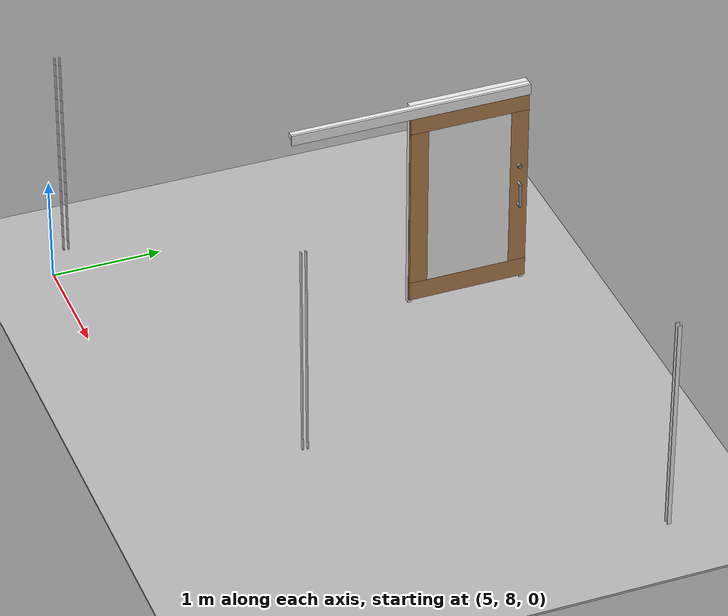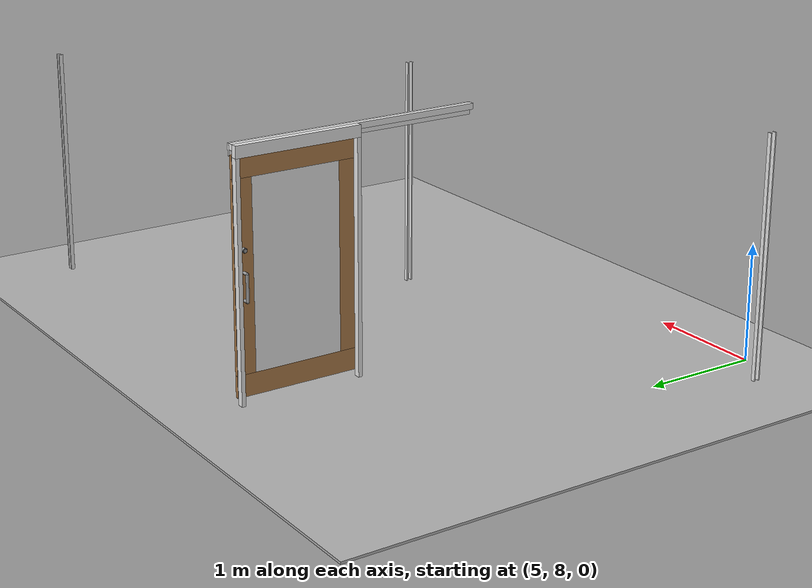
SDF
<sdf version="1.6">
 <world name="default">
  <model name="gplane">
   <pose>5.0375 6.59 0 0 -0 0</pose>
   <link name="body">
    <collision name="gplane_coll">
     <geometry><plane><normal>0 0 1</normal><size>10.075 13.18</size></plane></geometry>
     <surface><contact><ode><kp>1e+06</kp><kd>1</kd></ode></contact></surface>
     <laser_retro>2000</laser_retro>
    </collision>
    <visual name="gplane_vis">
     <geometry><plane><normal>0 0 1</normal><size>10.075 13.18</size></plane></geometry>
     <material>
      <script>
       <uri>model://base_materials/carpet/scripts</uri>
       <uri>model://base_materials/carpet/textures</uri>
       <name>carpet/carpet01</name>
      </script>
     </material>
     <cast_shadows>0</cast_shadows>
    </visual>
    <velocity_decay><linear>0</linear><angular>0</angular></velocity_decay>
   </link>
   <static>1</static>
  </model>
  <model name="door_stopper_x13y13">
   <link name="door_frame">
    <visual name="stopper">
     <pose>0.0225 0.0175 1.025 0 -0 0</pose>
     <geometry><box><size>0.01 0.035 2.05</size></box></geometry>
     <material>
      <script><uri>model://base_materials/color/scripts</uri><name>hsr_color/white</name></script>
     </material>
    </visual>
    <collision name="collision_frame_1">
     <pose>0.0225 0.0175 1.025 0 -0 0</pose>
     <geometry><box><size>0.01 0.035 2.05</size></box></geometry>
    </collision>
    <visual name="frame_2">
     <pose>-0.0225 0.0175 1.025 0 -0 0</pose>
     <geometry><box><size>0.01 0.035 2.05</size></box></geometry>
     <material>
      <script><uri>model://base_materials/color/scripts</uri><name>hsr_color/white</name></script>
     </material>
    </visual>
    <collision name="collision_frame_2">
     <pose>-0.0225 0.0175 1.025 0 -0 0</pose>
     <geometry><box><size>0.01 0.035 2.05</size></box></geometry>
    </collision>
   </link>
   <static>1</static>
   <pose>10.1025 11.67 0 0 -0 0</pose>
  </model>
  <model name="door_stopper_x08y09a">
   <link name="door_frame">
    <visual name="stopper">
     <pose>0.0225 0.0175 1.025 0 -0 0</pose>
     <geometry><box><size>0.01 0.035 2.05</size></box></geometry>
     <material>
      <script><uri>model://base_materials/color/scripts</uri><name>hsr_color/white</name></script>
     </material>
    </visual>
    <collision name="collision_frame_1">
     <pose>0.0225 0.0175 1.025 0 -0 0</pose>
     <geometry><box><size>0.01 0.035 2.05</size></box></geometry>
    </collision>
    <visual name="frame_2">
     <pose>-0.0225 0.0175 1.025 0 -0 0</pose>
     <geometry><box><size>0.01 0.035 2.05</size></box></geometry>
     <material>
      <script><uri>model://base_materials/color/scripts</uri><name>hsr_color/white</name></script>
     </material>
    </visual>
    <collision name="collision_frame_2">
     <pose>-0.0225 0.0175 1.025 0 -0 0</pose>
     <geometry><box><size>0.01 0.035 2.05</size></box></geometry>
    </collision>
   </link>
   <static>1</static>
   <pose>4.675 8.23 0 0 -0 1.5708</pose>
  </model>
  <model name="door_x08y13">
   <joint name="frame_to_world_joint" type="revolute">
    <parent>world</parent>
    <child>frame</child>
    <axis>
     <xyz>0 0 1</xyz>
     <limit><upper>0</upper><lower>0</lower></limit>
     <use_parent_model_frame>1</use_parent_model_frame>
     <dynamics><spring_reference>0</spring_reference><spring_stiffness>0</spring_stiffness></dynamics>
    </axis>
   </joint>
   <link name="frame">
    <inertial>
     <mass>50</mass>
     <inertia><ixx>1</ixx><ixy>0</ixy><ixz>0</ixz><iyy>1</iyy><iyz>0</iyz><izz>1</izz></inertia>
    </inertial>
    <visual name="right_frame">
     <pose>0 0.5325 0.995 0 -0 0</pose>
     <geometry><box><size>0.055 0.035 1.99</size></box></geometry>
     <material>
      <script><uri>model://base_materials/color/scripts</uri><name>hsr_color/white</name></script>
     </material>
    </visual>
    <collision name="collision_right_frame">
     <pose>0 0.5325 0.995 0 -0 0</pose>
     <geometry><box><size>0.055 0.035 1.99</size></box></geometry>
    </collision>
    <visual name="left_frame">
     <pose>0 -0.5325 0.995 0 -0 0</pose>
     <geometry><box><size>0.055 0.035 1.99</size></box></geometry>
     <material>
      <script><uri>model://base_materials/color/scripts</uri><name>hsr_color/white</name></script>
     </material>
    </visual>
    <collision name="collision_left_frame">
     <pose>0 -0.5325 0.995 0 -0 0</pose>
     <geometry><box><size>0.055 0.035 1.99</size></box></geometry>
    </collision>
    <visual name="top_frame">
     <pose>0 0 2.04 0 -0 0</pose>
     <geometry><box><size>0.055 1.1 0.1</size></box></geometry>
     <material>
      <script><uri>model://base_materials/color/scripts</uri><name>hsr_color/white</name></script>
     </material>
    </visual>
    <collision name="collision_top_frame">
     <pose>0 0 2.04 0 -0 0</pose>
     <geometry><box><size>0.055 1.1 0.1</size></box></geometry>
    </collision>
    <visual name="top_guard">
     <pose>0.05 -0.55 2.065 0 -0 0</pose>
     <geometry><box><size>0.045 2.2 0.05</size></box></geometry>
     <material>
      <script><uri>model://base_materials/color/scripts</uri><name>hsr_color/white</name></script>
     </material>
    </visual>
    <collision name="collision_top_guard">
     <pose>0.05 -0.55 2.065 0 -0 0</pose>
     <geometry><box><size>0.045 2.2 0.05</size></box></geometry>
    </collision>
    <visual name="front_guard">
     <pose>0.0825 -0.55 2.04 0 -0 0</pose>
     <geometry><box><size>0.02 2.2 0.1</size></box></geometry>
     <material>
      <script><uri>model://base_materials/color/scripts</uri><name>hsr_color/white</name></script>
     </material>
    </visual>
    <collision name="collision_front_guard">
     <pose>0.0825 -0.55 2.04 0 -0 0</pose>
     <geometry><box><size>0.02 2.2 0.1</size></box></geometry>
    </collision>
   </link>
   <link name="door">
    <pose>-0.0275 0 0 0 -0 0</pose>
    <visual name="glass">
     <pose>0.0775 0 1.025 0 -0 0</pose>
     <geometry><box><size>0.03 0.77 1.58</size></box></geometry>
     <material>
      <script>
       <name>hsr_color/white_transparency1</name>
       <name>hsr_color/cornflowerblue_transparency1</name>
       <uri>__default__</uri>
      </script>
     </material>
    </visual>
    <collision name="collision_glass">
     <pose>0.0775 0 1.025 0 -0 0</pose>
     <geometry><box><size>0.03 0.77 1.58</size></box></geometry>
    </collision>
    <visual name="top_frame">
     <pose>0.0775 0 1.9075 0 -0 0</pose>
     <geometry><box><size>0.03 1.1 0.185</size></box></geometry>
     <material>
      <script><uri>model://base_materials/wood/scripts/wood.material</uri><name>base_materials/wood</name></script>
     </material>
    </visual>
    <collision name="collision_top_frame">
     <pose>0.0775 0 1.9075 0 -0 0</pose>
     <geometry><box><size>0.03 1.1 0.185</size></box></geometry>
    </collision>
    <visual name="right_frame">
     <pose>0.0775 0.4675 1.025 0 -0 0</pose>
     <geometry><box><size>0.03 0.165 1.58</size></box></geometry>
     <material>
      <script><uri>model://base_materials/wood/scripts/wood.material</uri><name>base_materials/wood</name></script>
     </material>
    </visual>
    <collision name="collision_right_frame">
     <pose>0.0775 0.4675 1.025 0 -0 0</pose>
     <geometry><box><size>0.03 0.165 1.58</size></box></geometry>
    </collision>
    <visual name="left_frame">
     <pose>0.0775 -0.4675 1.025 0 -0 0</pose>
     <geometry><box><size>0.03 0.165 1.58</size></box></geometry>
     <material>
      <script><uri>model://base_materials/wood/scripts/wood.material</uri><name>base_materials/wood</name></script>
     </material>
    </visual>
    <collision name="collision_left_frame">
     <pose>0.0775 -0.4675 1.025 0 -0 0</pose>
     <geometry><box><size>0.03 0.165 1.58</size></box></geometry>
    </collision>
    <visual name="bottom_frame">
     <pose>0.0775 0 0.1425 0 -0 0</pose>
     <geometry><box><size>0.03 1.1 0.185</size></box></geometry>
     <material>
      <script><uri>model://base_materials/wood/scripts/wood.material</uri><name>base_materials/wood</name></script>
     </material>
    </visual>
    <collision name="collision_bottom_frame">
     <pose>0.0775 0 0.1425 0 -0 0</pose>
     <geometry><box><size>0.03 1.1 0.185</size></box></geometry>
    </collision>
    <visual name="handle_top_frame">
     <pose>0.0775 0.4675 1.0675 3.14159 1.57079 3.14159</pose>
     <geometry><cylinder><radius>0.0125</radius><length>0.125</length></cylinder></geometry>
     <material>
      <script><uri>model://base_materials/color/scripts</uri><name>hsr_color/grey</name></script>
     </material>
    </visual>
    <collision name="collision_handle_top_frame">
     <pose>0.0775 0.4675 1.0675 3.14159 1.57079 3.14159</pose>
     <geometry><cylinder><radius>0.0125</radius><length>0.125</length></cylinder></geometry>
    </collision>
    <visual name="handle_bottom_frame">
     <pose>0.0775 0.4675 0.8425 3.14159 1.57079 3.14159</pose>
     <geometry><cylinder><radius>0.0125</radius><length>0.125</length></cylinder></geometry>
     <material>
      <script><uri>model://base_materials/color/scripts</uri><name>hsr_color/grey</name></script>
     </material>
    </visual>
    <collision name="collision_handle_bottom_frame">
     <pose>0.0775 0.4675 0.8425 3.14159 1.57079 3.14159</pose>
     <geometry><cylinder><radius>0.0125</radius><length>0.125</length></cylinder></geometry>
    </collision>
    <visual name="handle_front_frame">
     <pose>0.14 0.4675 0.955 0 -0 0</pose>
     <geometry><cylinder><radius>0.0125</radius><length>0.225</length></cylinder></geometry>
     <material>
      <script><uri>model://base_materials/color/scripts</uri><name>hsr_color/grey</name></script>
     </material>
    </visual>
    <collision name="collision_handle_front_frame">
     <pose>0.14 0.4675 0.955 0 -0 0</pose>
     <geometry><cylinder><radius>0.0125</radius><length>0.225</length></cylinder></geometry>
    </collision>
    <visual name="handle_back_frame">
     <pose>0.015 0.4675 0.955 0 -0 0</pose>
     <geometry><cylinder><radius>0.0125</radius><length>0.225</length></cylinder></geometry>
     <material>
      <script><uri>model://base_materials/color/scripts</uri><name>hsr_color/grey</name></script>
     </material>
    </visual>
    <collision name="collision_handle_back_frame">
     <pose>0.015 0.4675 0.955 0 -0 0</pose>
     <geometry><cylinder><radius>0.0125</radius><length>0.225</length></cylinder></geometry>
    </collision>
    <visual name="handle_front_top_corner">
     <pose>0.14 0.4675 1.0675 0 -0 0</pose>
     <geometry><sphere><radius>0.0125</radius></sphere></geometry>
     <material>
      <script><uri>model://base_materials/color/scripts</uri><name>hsr_color/grey</name></script>
     </material>
    </visual>
    <collision name="collision_handle_front_top_corner">
     <pose>0.14 0.4675 1.0675 0 -0 0</pose>
     <geometry><sphere><radius>0.0125</radius></sphere></geometry>
    </collision>
    <visual name="handle_front_bottom_corner">
     <pose>0.14 0.4675 0.8425 0 -0 0</pose>
     <geometry><sphere><radius>0.0125</radius></sphere></geometry>
     <material>
      <script><uri>model://base_materials/color/scripts</uri><name>hsr_color/grey</name></script>
     </material>
    </visual>
    <collision name="collision_handle_front_bottom_corner">
     <pose>0.14 0.4675 0.8425 0 -0 0</pose>
     <geometry><sphere><radius>0.0125</radius></sphere></geometry>
    </collision>
    <visual name="handle_back_top_corner">
     <pose>0.015 0.4675 1.0675 0 -0 0</pose>
     <geometry><sphere><radius>0.0125</radius></sphere></geometry>
     <material>
      <script><uri>model://base_materials/color/scripts</uri><name>hsr_color/grey</name></script>
     </material>
    </visual>
    <collision name="collision_handle_back_top_corner">
     <pose>0.015 0.4675 1.0675 0 -0 0</pose>
     <geometry><sphere><radius>0.0125</radius></sphere></geometry>
    </collision>
    <visual name="handle_back_bottom_corner">
     <pose>0.015 0.4675 0.8425 0 -0 0</pose>
     <geometry><sphere><radius>0.0125</radius></sphere></geometry>
     <material>
      <script><uri>model://base_materials/color/scripts</uri><name>hsr_color/grey</name></script>
     </material>
    </visual>
    <collision name="collision_handle_back_bottom_corner">
     <pose>0.015 0.4675 0.8425 0 -0 0</pose>
     <geometry><sphere><radius>0.0125</radius></sphere></geometry>
    </collision>
    <visual name="handle_lock1">
     <pose>0.0775 0.4675 1.25 3.14159 1.57079 3.14159</pose>
     <geometry><cylinder><radius>0.02</radius><length>0.08</length></cylinder></geometry>
     <material>
      <script><uri>model://base_materials/color/scripts</uri><name>hsr_color/grey</name></script>
     </material>
    </visual>
    <collision name="collision_handle_lock1">
     <pose>0.0775 0.4675 1.25 3.14159 1.57079 3.14159</pose>
     <geometry><cylinder><radius>0.02</radius><length>0.08</length></cylinder></geometry>
    </collision>
    <visual name="handle_lock2">
     <pose>0.0775 0.4675 1.25 3.14159 1.57079 3.14159</pose>
     <geometry><cylinder><radius>0.015</radius><length>0.09</length></cylinder></geometry>
     <material>
      <script><uri>model://base_materials/color/scripts</uri><name>hsr_color/grey</name></script>
     </material>
    </visual>
    <collision name="collision_handle_lock2">
     <pose>0.0775 0.4675 1.25 3.14159 1.57079 3.14159</pose>
     <geometry><cylinder><radius>0.015</radius><length>0.09</length></cylinder></geometry>
    </collision>
    <velocity_decay><linear>0</linear><angular>0</angular></velocity_decay>
    <inertial>
     <inertia><ixx>1</ixx><ixy>0</ixy><ixz>0</ixz><iyy>1</iyy><iyz>0</iyz><izz>1</izz></inertia>
     <mass>1</mass>
    </inertial>
   </link>
   <joint name="top_sliding_joint" type="prismatic">
    <parent>frame</parent>
    <child>door</child>
    <axis>
     <dynamics>
      <damping>1</damping>
      <friction>1</friction>
      <spring_reference>0</spring_reference>
      <spring_stiffness>0</spring_stiffness>
     </dynamics>
     <limit><lower>-1</lower><upper>0</upper></limit>
     <xyz>0 1 0</xyz>
     <use_parent_model_frame>1</use_parent_model_frame>
    </axis>
   </joint>
   <static>0</static>
   <pose>6.47818 11.35 -0.001042 -0.000109 -4.5e-05 0.00053</pose>
  </model>
  <model name="door_stopper_x10y11">
   <link name="door_frame">
    <visual name="stopper">
     <pose>0.0225 0.0175 1.025 0 -0 0</pose>
     <geometry><box><size>0.01 0.035 2.05</size></box></geometry>
     <material>
      <script><uri>model://base_materials/color/scripts</uri><name>hsr_color/white</name></script>
     </material>
    </visual>
    <collision name="collision_frame_1">
     <pose>0.0225 0.0175 1.025 0 -0 0</pose>
     <geometry><box><size>0.01 0.035 2.05</size></box></geometry>
    </collision>
    <visual name="frame_2">
     <pose>-0.0225 0.0175 1.025 0 -0 0</pose>
     <geometry><box><size>0.01 0.035 2.05</size></box></geometry>
     <material>
      <script><uri>model://base_materials/color/scripts</uri><name>hsr_color/white</name></script>
     </material>
    </visual>
    <collision name="collision_frame_2">
     <pose>-0.0225 0.0175 1.025 0 -0 0</pose>
     <geometry><box><size>0.01 0.035 2.05</size></box></geometry>
    </collision>
   </link>
   <static>1</static>
   <pose>8.13 9.23 0 0 -0 1.5708</pose>
  </model>
  <model name="lawn_garden">
   <link name="link">
    <inertial>
     <mass>10</mass>
     <inertia><ixx>1</ixx><ixy>0</ixy><ixz>0</ixz><iyy>1</iyy><iyz>0</iyz><izz>1</izz></inertia>
    </inertial>
    <visual name="lawn_garden">
     <pose>0 0 -0.011 0 -0 0</pose>
     <geometry><box><size>14.075 17.185 0.02</size></box></geometry>
     <material>
      <script>
       <uri>model://base_materials/lawn/scripts/lawn.material</uri>
       <uri>model://base_materials/lawn/textures</uri>
       <name>lawn/lawn01</name>
      </script>
     </material>
    </visual>
    <collision name="collision_lawn_garden">
     <pose>0 0 -0.011 0 -0 0</pose>
     <geometry><box><size>14.075 17.185 0.02</size></box></geometry>
    </collision>
    <velocity_decay><linear>0</linear><angular>0</angular></velocity_decay>
   </link>
   <static>1</static>
   <pose>5.375 6.59 0 0 -0 0</pose>
  </model>
 </world>
</sdf>
